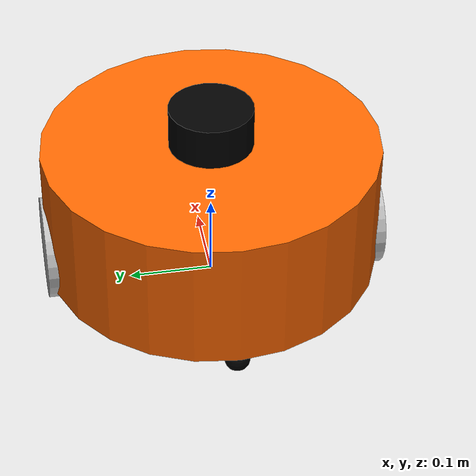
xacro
<?xml version="1.0"?>
<robot name="mbot" xmlns:xacro="http://www.ros.org/wiki/xacro">

    <xacro:include filename="$(find rl_explore_description)/urdf/mbot_base_gazebo_harmonic.xacro" />
    <xacro:include filename="$(find rl_explore_description)/urdf/sensors/lidar_gazebo_harmonic.xacro" />

    <xacro:property name="lidar_offset_x" value="0" />
    <xacro:property name="lidar_offset_y" value="0" />
    <xacro:property name="lidar_offset_z" value="0.105" />

    <!-- lidar -->
    <joint name="lidar_joint" type="fixed">
        <origin xyz="${lidar_offset_x} ${lidar_offset_y} ${lidar_offset_z}" rpy="0 0 0" />
        <parent link="base_link"/>
        <child link="laser_link"/>
    </joint>

    <xacro:laser_lidar prefix="laser"/>
    <xacro:laser_lidar_sensor prefix="laser" sensor_name="ccrl_gpu_lidar" topic="ccrl_lidar" samples="31" visualize="false"/>

    <xacro:mbot_base_gazebo/>

</robot>

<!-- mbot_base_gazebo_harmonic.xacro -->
<robot name="mbot" xmlns:xacro="http://www.ros.org/wiki/xacro">
    <!-- PROPERTY LIST -->
    <xacro:property name="M_PI" value="3.1415926"/>
    <xacro:property name="base_mass"   value="1" />
    <xacro:property name="base_radius" value="0.20"/>
    <xacro:property name="base_length" value="0.16"/>

    <xacro:property name="wheel_mass"   value="0.2" />
    <xacro:property name="wheel_radius" value="0.06"/>
    <xacro:property name="wheel_length" value="0.025"/>
    <xacro:property name="wheel_joint_y" value="0.19"/>
    <xacro:property name="wheel_joint_z" value="0.05"/>

    <xacro:property name="caster_mass"    value="0.2" />
    <xacro:property name="caster_radius"  value="0.015"/> <!-- wheel_radius - ( base_length/2 - wheel_joint_z) -->
    <xacro:property name="caster_joint_x" value="0.18"/>

    <!-- Defining the colors used in this robot -->
    <material name="yellow">
        <color rgba="1 0.4 0 1"/>
    </material>
    <material name="black">
        <color rgba="0 0 0 0.95"/>
    </material>
    <material name="gray">
        <color rgba="0.75 0.75 0.75 1"/>
    </material>

    <!-- Macro for inertia matrix -->
    <xacro:macro name="sphere_inertial_matrix" params="m r">
        <inertial>
            <origin xyz="0 0 0" rpy="0 0 0"/>
            <mass value="${m}" />
            <inertia ixx="${2*m*r*r/5}" ixy="0" ixz="0"
                iyy="${2*m*r*r/5}" iyz="0"
                izz="${2*m*r*r/5}" />
        </inertial>
    </xacro:macro>

    <xacro:macro name="cylinder_inertial_matrix" params="m r h">
        <inertial>
            <origin xyz="0 0 0" rpy="0 0 0"/>
            <mass value="${m}" />
            <inertia ixx="${m*(3*r*r+h*h)/12}" ixy = "0" ixz = "0"
                iyy="${m*(3*r*r+h*h)/12}" iyz = "0"
                izz="${m*r*r/2}" />
        </inertial>
    </xacro:macro>

    <!-- Macro for robot wheel -->
    <xacro:macro name="wheel" params="prefix reflect">
        <joint name="${prefix}_wheel_joint" type="continuous">
            <origin xyz="0 ${reflect*wheel_joint_y} ${-wheel_joint_z}" rpy="0 0 0"/>
            <parent link="base_link"/>
            <child link="${prefix}_wheel_link"/>
            <axis xyz="0 1 0"/>
        </joint>

        <link name="${prefix}_wheel_link">
            <collision>
                <origin xyz="0 0 0" rpy="${M_PI/2} 0 0" />
                <geometry>
                    <cylinder radius="${wheel_radius}" length = "${wheel_length}"/>
                </geometry>
            </collision>

            <visual>
                <origin xyz="0 0 0" rpy="${M_PI/2} 0 0" />
                <geometry>
                    <cylinder radius="${wheel_radius}" length = "${wheel_length}"/>
                </geometry>
                <material name="gray"><color rgba="0.75 0.75 0.75 1"/></material>
            </visual>

            <xacro:cylinder_inertial_matrix  m="${wheel_mass}" r="${wheel_radius}" h="${wheel_length}" />
        </link>

        <gazebo reference="${prefix}_wheel_link">
            <mu1>100000.0</mu1>
            <mu2>100000.0</mu2>
        </gazebo>
    </xacro:macro>

    <!-- Macro for robot caster -->
    <xacro:macro name="caster" params="prefix reflect">
        <joint name="${prefix}_caster_joint" type="fixed">
            <origin xyz="${reflect*caster_joint_x} 0 ${-(base_length/2 + caster_radius)}" rpy="0 0 0"/>
            <parent link="base_link"/>
            <child link="${prefix}_caster_link"/>
        </joint>

        <link name="${prefix}_caster_link">
            <collision>
                <origin xyz="0 0 0" rpy="0 0 0"/>
                <geometry>
                    <sphere radius="${caster_radius}" />
                </geometry>
            </collision>

            <visual>
                <origin xyz="0 0 0" rpy="0 0 0"/>
                <geometry>
                    <sphere radius="${caster_radius}" />
                </geometry>
                <material name="black"><color rgba="0 0 0 0.95"/></material>
            </visual>

            <xacro:sphere_inertial_matrix  m="${caster_mass}" r="${caster_radius}" />
        </link>
    </xacro:macro>

    <xacro:macro name="mbot_base_gazebo">
        <link name="base_footprint"/>

        <joint name="base_footprint_joint" type="fixed">
            <origin xyz="0 0 ${wheel_joint_z + wheel_radius}" rpy="0 0 0"/>
            <parent link="base_footprint"/>
            <child link="base_link" />
        </joint>

        <link name="base_link">
         	<collision>
                <origin xyz=" 0 0 0" rpy="0 0 0" />
                <geometry>
                    <cylinder length="${base_length}" radius="${base_radius}"/>
                </geometry>
            </collision>

            <visual>
                <origin xyz=" 0 0 0" rpy="0 0 0" />
                <geometry>
                    <cylinder length="${base_length}" radius="${base_radius}"/>
                </geometry>
                <material name="yellow"><color rgba="1 0.4 0 1"/></material>
            </visual>

            <xacro:cylinder_inertial_matrix  m="${base_mass}" r="${base_radius}" h="${base_length}" />
        </link>

        <xacro:wheel prefix="left"  reflect="1"/>
        <xacro:wheel prefix="right" reflect="-1"/>

        <xacro:caster prefix="front" reflect="-1"/>
        <xacro:caster prefix="back"  reflect="1"/>

        <!-- controller -->
        <gazebo>
            <plugin filename="libignition-gazebo-diff-drive-system.so"
                    name="ignition::gazebo::systems::DiffDrive">
                  <update_rate>30</update_rate>
                  <left_joint>left_wheel_joint</left_joint>
                  <right_joint>right_wheel_joint</right_joint>
                  <wheel_separation>${wheel_joint_y*2}</wheel_separation>
                  <wheel_radius>${wheel_radius}</wheel_radius>
                  <topic>rl_explore_cmd_vel</topic>
                  <publish_odom>true</publish_odom>
                  <publish_odom_tf>false</publish_odom_tf>
                  <publish_wheel_tf>false</publish_wheel_tf>
                  <odometry_topic>odom</odometry_topic>
                  <odometry_frame>odom</odometry_frame>
                  <robot_base_frame>base_footprint</robot_base_frame>
            </plugin>
            <plugin filename="libignition-gazebo-joint-state-publisher-system.so"
                    name="ignition::gazebo::systems::JointStatePublisher"/>
        </gazebo>
    </xacro:macro>

</robot>

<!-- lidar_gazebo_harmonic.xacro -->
<robot xmlns:xacro="http://www.ros.org/wiki/xacro" name="laser">

    <xacro:macro name="laser_lidar_sensor" params="prefix:=laser sensor_name:=gpu_lidar topic:=lidar samples:=271 visualize:=true">
        <gazebo reference="${prefix}_link">
            <sensor type="gpu_lidar" name="${sensor_name}">
                <gz_frame_id>${prefix}_link</gz_frame_id>
                <topic>${topic}</topic>
                <update_rate>20</update_rate>
                <ray>
                    <scan>
                        <horizontal>
                            <samples>${samples}</samples>
                            <resolution>1</resolution>
                            <min_angle>-2.35619</min_angle>
                            <max_angle>2.35619</max_angle>
                        </horizontal>
                        <vertical>
                            <samples>1</samples>
                            <resolution>0.01</resolution>
                            <min_angle>0</min_angle>
                            <max_angle>0</max_angle>
                        </vertical>
                    </scan>
                    <range>
                        <min>0.08</min>
                        <max>32.5</max>
                        <resolution>0.01</resolution>
                    </range>
                </ray>
                <always_on>1</always_on>
                <visualize>${visualize}</visualize>
            </sensor>
        </gazebo>
    </xacro:macro>

    <xacro:macro name="laser_lidar" params="prefix:=laser topic:=lidar samples:=271 visualize:=true">
        <!-- Create laser reference frame -->
        <link name="${prefix}_link">
            <inertial>
                <mass value="0.1" />
                <origin xyz="0 0 0" />
                <inertia ixx="0.01" ixy="0.0" ixz="0.0"
                         iyy="0.01" iyz="0.0"
                         izz="0.01" />
            </inertial>

            <visual>
                <origin xyz=" 0 0 0 " rpy="0 0 0" />
                <geometry>
                    <cylinder length="0.05" radius="0.05"/>
                </geometry>
                <material name="black"><color rgba="0 0 0 0.95"/></material>
            </visual>

            <collision>
                <origin xyz="0.0 0.0 0.0" rpy="0 0 0" />
                <geometry>
                    <cylinder length="0.06" radius="0.05"/>
                </geometry>
            </collision>
        </link>

        <xacro:laser_lidar_sensor prefix="${prefix}" sensor_name="${prefix}_gpu_lidar" topic="${topic}" samples="${samples}" visualize="${visualize}" />
    </xacro:macro>
</robot>
